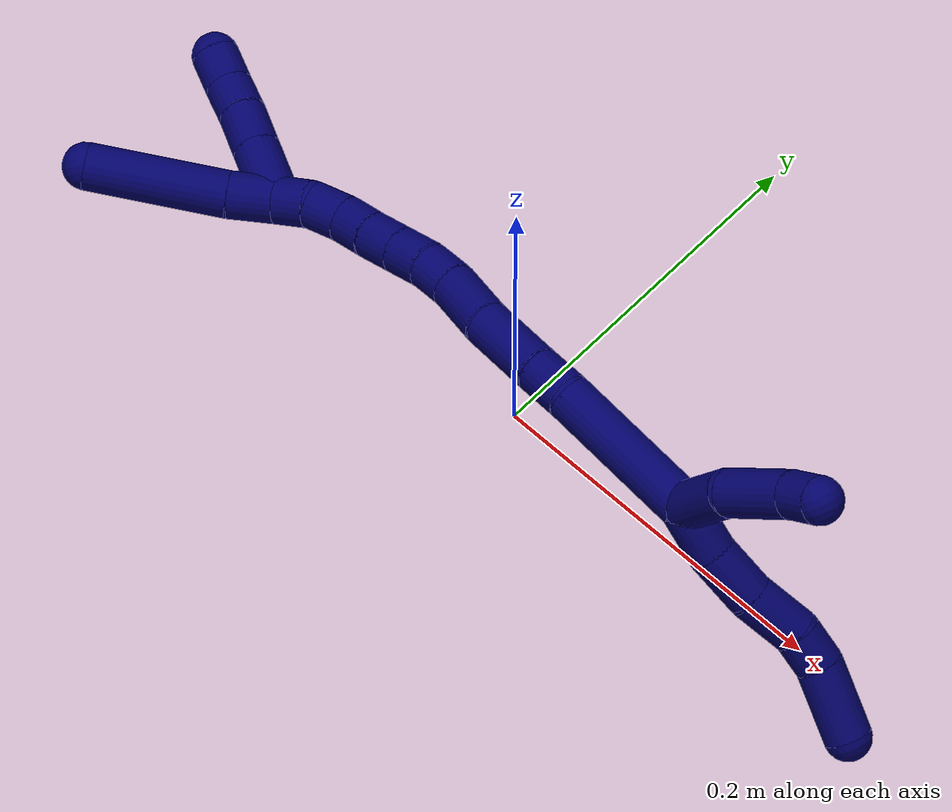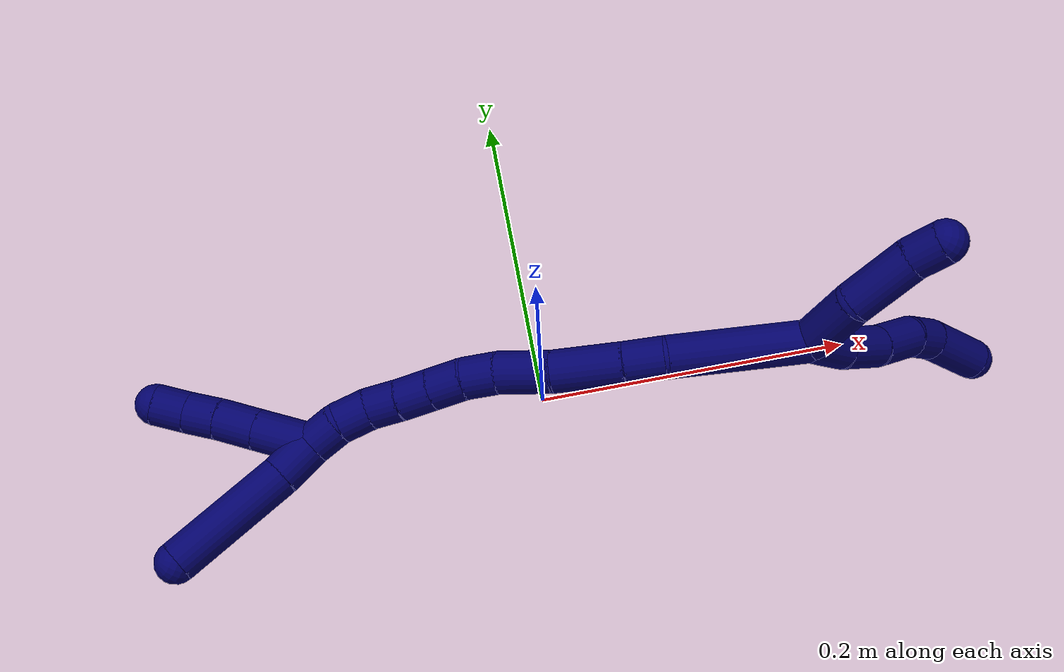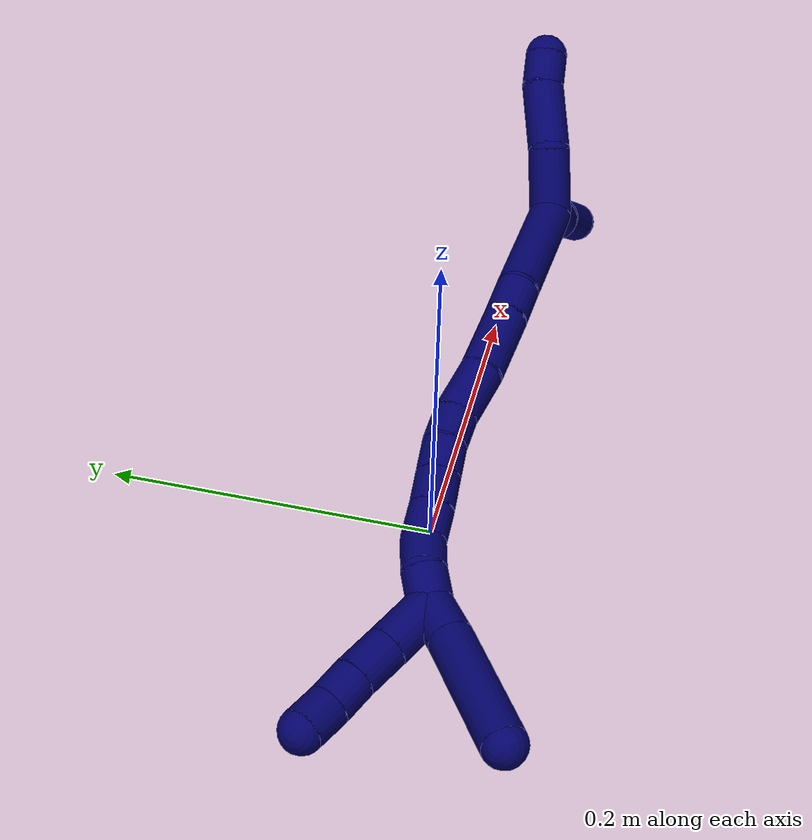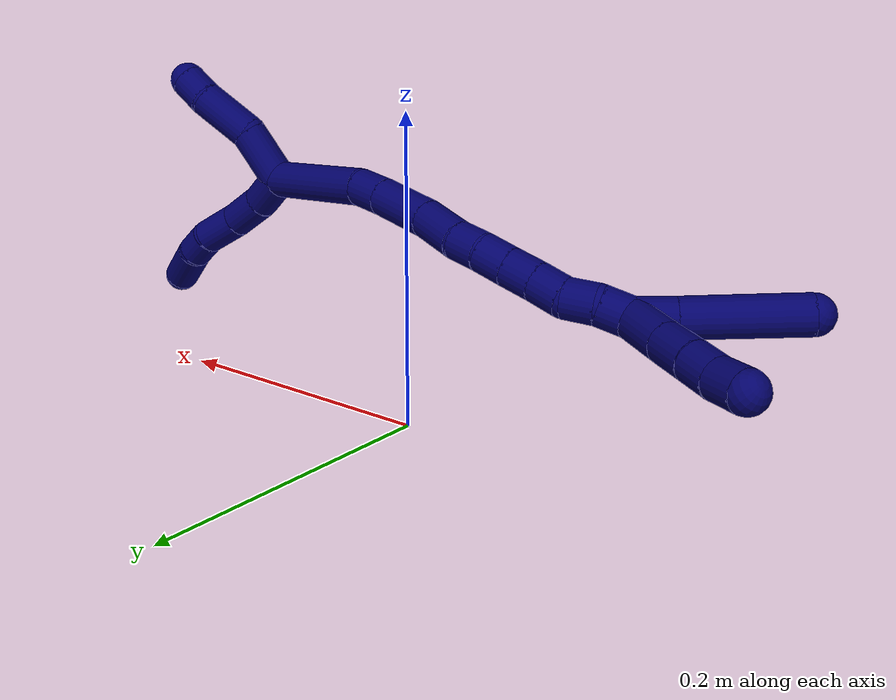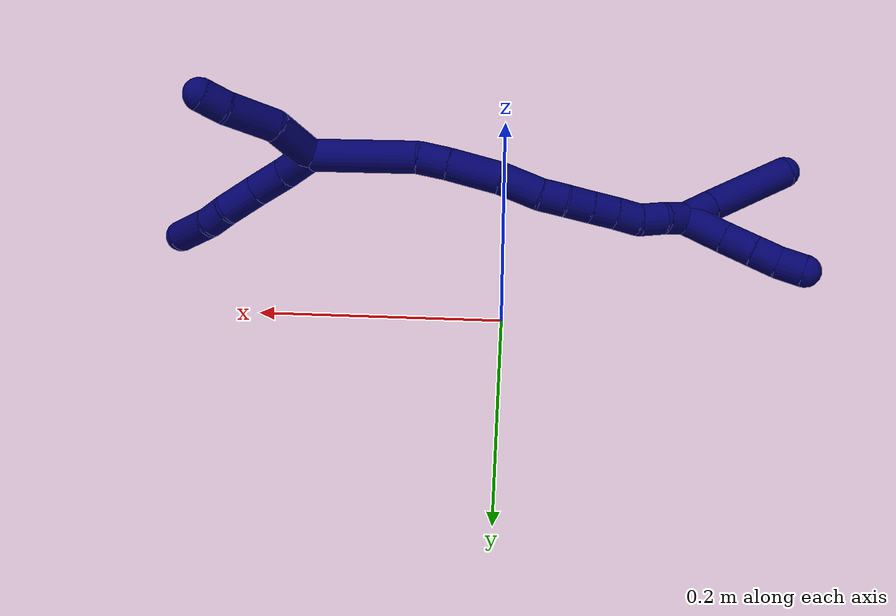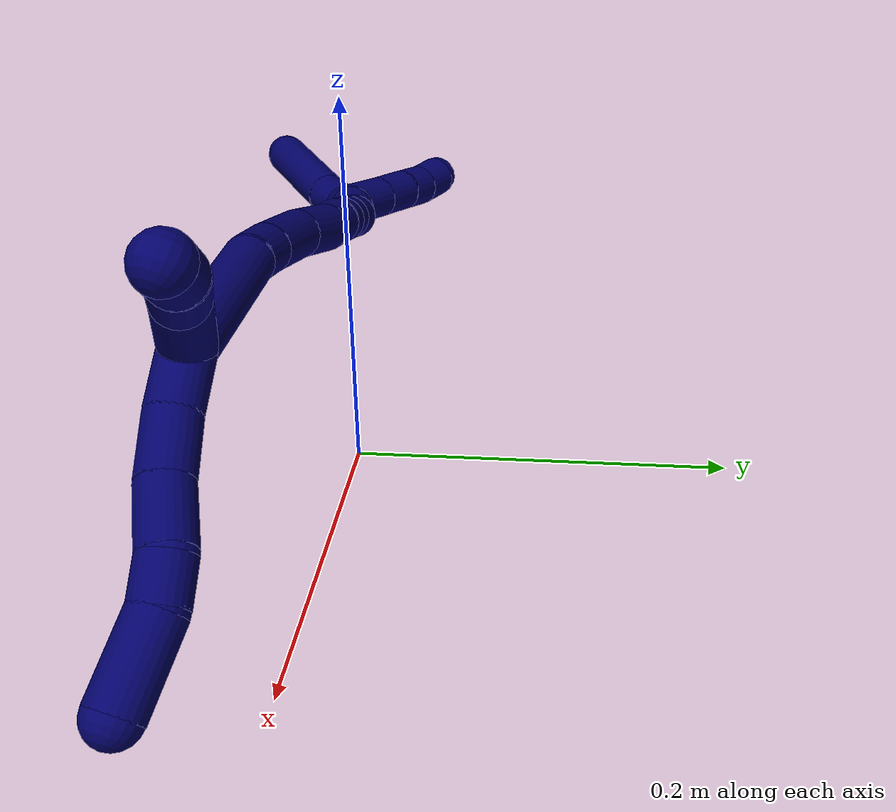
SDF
<sdf version="1.7">
 <world name="default">
  <model name="7">
   <static>0</static>
   <link name="7">
    <collision name="collision-cylinder-e_1_2_8">
     <pose>3e-06 0.002511 -0.014051 -2.96478 0.000212 -0.00239</pose>
     <geometry><cylinder><radius>0.0125</radius><length>0.028547</length></cylinder></geometry>
     <surface>
      <friction><ode><mu>1.16</mu><mu2>1.16</mu2><slip1>0</slip1><slip2>0</slip2></ode></friction>
      <contact><ode><kp>1e+06</kp><kd>1</kd><max_vel>0</max_vel><min_depth>0.001</min_depth></ode></contact>
     </surface>
    </collision>
    <visual name="visual-cylinder-e_1_2_8">
     <pose>3e-06 0.002511 -0.014051 -2.96478 0.000212 -0.00239</pose>
     <geometry><cylinder><radius>0.0125</radius><length>0.028547</length></cylinder></geometry>
     <material><ambient>0.003922 0 0.403922 1</ambient></material>
    </visual>
    <collision name="collision-cylinder-e_2_8_9">
     <pose>0.002222 0.009215 -0.042129 -2.8511 0.150239 -0.950382</pose>
     <geometry><cylinder><radius>0.0125</radius><length>0.029614</length></cylinder></geometry>
     <surface>
      <friction><ode><mu>1.16</mu><mu2>1.16</mu2><slip1>0</slip1><slip2>0</slip2></ode></friction>
      <contact><ode><kp>1e+06</kp><kd>1</kd><max_vel>0</max_vel><min_depth>0.001</min_depth></ode></contact>
     </surface>
    </collision>
    <visual name="visual-cylinder-e_2_8_9">
     <pose>0.002222 0.009215 -0.042129 -2.8511 0.150239 -0.950382</pose>
     <geometry><cylinder><radius>0.0125</radius><length>0.029614</length></cylinder></geometry>
     <material><ambient>0.003922 0 0.403922 1</ambient></material>
    </visual>
    <collision name="collision-cylinder-e_3_9_10">
     <pose>0.007814 0.019685 -0.069624 -2.70543 0.223344 -0.936915</pose>
     <geometry><cylinder><radius>0.0125</radius><length>0.030475</length></cylinder></geometry>
     <surface>
      <friction><ode><mu>1.16</mu><mu2>1.16</mu2><slip1>0</slip1><slip2>0</slip2></ode></friction>
      <contact><ode><kp>1e+06</kp><kd>1</kd><max_vel>0</max_vel><min_depth>0.001</min_depth></ode></contact>
     </surface>
    </collision>
    <visual name="visual-cylinder-e_3_9_10">
     <pose>0.007814 0.019685 -0.069624 -2.70543 0.223344 -0.936915</pose>
     <geometry><cylinder><radius>0.0125</radius><length>0.030475</length></cylinder></geometry>
     <material><ambient>0.003922 0 0.403922 1</ambient></material>
    </visual>
    <collision name="collision-cylinder-e_4_10_11">
     <pose>0.011478 0.028424 -0.093317 -2.90541 0.027542 -0.231114</pose>
     <geometry><cylinder><radius>0.0125</radius><length>0.021044</length></cylinder></geometry>
     <surface>
      <friction><ode><mu>1.16</mu><mu2>1.16</mu2><slip1>0</slip1><slip2>0</slip2></ode></friction>
      <contact><ode><kp>1e+06</kp><kd>1</kd><max_vel>0</max_vel><min_depth>0.001</min_depth></ode></contact>
     </surface>
    </collision>
    <visual name="visual-cylinder-e_4_10_11">
     <pose>0.011478 0.028424 -0.093317 -2.90541 0.027542 -0.231114</pose>
     <geometry><cylinder><radius>0.0125</radius><length>0.021044</length></cylinder></geometry>
     <material><ambient>0.003922 0 0.403922 1</ambient></material>
    </visual>
    <collision name="collision-cylinder-e_5_11_6">
     <pose>0.011664 0.030521 -0.1237 3.12355 -0.005181 -0.559165</pose>
     <geometry><cylinder><radius>0.0125</radius><length>0.04032</length></cylinder></geometry>
     <surface>
      <friction><ode><mu>1.16</mu><mu2>1.16</mu2><slip1>0</slip1><slip2>0</slip2></ode></friction>
      <contact><ode><kp>1e+06</kp><kd>1</kd><max_vel>0</max_vel><min_depth>0.001</min_depth></ode></contact>
     </surface>
    </collision>
    <visual name="visual-cylinder-e_5_11_6">
     <pose>0.011664 0.030521 -0.1237 3.12355 -0.005181 -0.559165</pose>
     <geometry><cylinder><radius>0.0125</radius><length>0.04032</length></cylinder></geometry>
     <material><ambient>0.003922 0 0.403922 1</ambient></material>
    </visual>
    <collision name="collision-cylinder-e_1_2_12">
     <pose>0.019493 -0.000398 0.002569 0.153789 1.43821 0.134702</pose>
     <geometry><cylinder><radius>0.0125</radius><length>0.039332</length></cylinder></geometry>
     <surface>
      <friction><ode><mu>1.16</mu><mu2>1.16</mu2><slip1>0</slip1><slip2>0</slip2></ode></friction>
      <contact><ode><kp>1e+06</kp><kd>1</kd><max_vel>0</max_vel><min_depth>0.001</min_depth></ode></contact>
     </surface>
    </collision>
    <visual name="visual-cylinder-e_1_2_12">
     <pose>0.019493 -0.000398 0.002569 0.153789 1.43821 0.134702</pose>
     <geometry><cylinder><radius>0.0125</radius><length>0.039332</length></cylinder></geometry>
     <material><ambient>0.003922 0 0.403922 1</ambient></material>
    </visual>
    <collision name="collision-cylinder-e_2_12_13">
     <pose>0.058702 0.002168 0.001899 -2.40053 1.35164 -2.23922</pose>
     <geometry><cylinder><radius>0.0125</radius><length>0.040396</length></cylinder></geometry>
     <surface>
      <friction><ode><mu>1.16</mu><mu2>1.16</mu2><slip1>0</slip1><slip2>0</slip2></ode></friction>
      <contact><ode><kp>1e+06</kp><kd>1</kd><max_vel>0</max_vel><min_depth>0.001</min_depth></ode></contact>
     </surface>
    </collision>
    <visual name="visual-cylinder-e_2_12_13">
     <pose>0.058702 0.002168 0.001899 -2.40053 1.35164 -2.23922</pose>
     <geometry><cylinder><radius>0.0125</radius><length>0.040396</length></cylinder></geometry>
     <material><ambient>0.003922 0 0.403922 1</ambient></material>
    </visual>
    <collision name="collision-cylinder-e_3_13_5">
     <pose>0.088334 0.00471 -0.003393 2.93859 1.3626 2.89167</pose>
     <geometry><cylinder><radius>0.0125</radius><length>0.020272</length></cylinder></geometry>
     <surface>
      <friction><ode><mu>1.16</mu><mu2>1.16</mu2><slip1>0</slip1><slip2>0</slip2></ode></friction>
      <contact><ode><kp>1e+06</kp><kd>1</kd><max_vel>0</max_vel><min_depth>0.001</min_depth></ode></contact>
     </surface>
    </collision>
    <visual name="visual-cylinder-e_3_13_5">
     <pose>0.088334 0.00471 -0.003393 2.93859 1.3626 2.89167</pose>
     <geometry><cylinder><radius>0.0125</radius><length>0.020272</length></cylinder></geometry>
     <material><ambient>0.003922 0 0.403922 1</ambient></material>
    </visual>
    <collision name="collision-cylinder-e_1_2_14">
     <pose>-0.025386 -0.000984 0.032693 0.03009 -0.660021 -0.010308</pose>
     <geometry><cylinder><radius>0.0125</radius><length>0.082808</length></cylinder></geometry>
     <surface>
      <friction><ode><mu>1.16</mu><mu2>1.16</mu2><slip1>0</slip1><slip2>0</slip2></ode></friction>
      <contact><ode><kp>1e+06</kp><kd>1</kd><max_vel>0</max_vel><min_depth>0.001</min_depth></ode></contact>
     </surface>
    </collision>
    <visual name="visual-cylinder-e_1_2_14">
     <pose>-0.025386 -0.000984 0.032693 0.03009 -0.660021 -0.010308</pose>
     <geometry><cylinder><radius>0.0125</radius><length>0.082808</length></cylinder></geometry>
     <material><ambient>0.003922 0 0.403922 1</ambient></material>
    </visual>
    <collision name="collision-cylinder-e_2_14_15">
     <pose>-0.059521 -0.001096 0.073016 -0.113825 -0.850472 0.051592</pose>
     <geometry><cylinder><radius>0.0125</radius><length>0.023281</length></cylinder></geometry>
     <surface>
      <friction><ode><mu>1.16</mu><mu2>1.16</mu2><slip1>0</slip1><slip2>0</slip2></ode></friction>
      <contact><ode><kp>1e+06</kp><kd>1</kd><max_vel>0</max_vel><min_depth>0.001</min_depth></ode></contact>
     </surface>
    </collision>
    <visual name="visual-cylinder-e_2_14_15">
     <pose>-0.059521 -0.001096 0.073016 -0.113825 -0.850472 0.051592</pose>
     <geometry><cylinder><radius>0.0125</radius><length>0.023281</length></cylinder></geometry>
     <material><ambient>0.003922 0 0.403922 1</ambient></material>
    </visual>
    <collision name="collision-cylinder-e_3_15_16">
     <pose>-0.08417 0.002245 0.093782 -0.185757 -0.871707 0.086707</pose>
     <geometry><cylinder><radius>0.0125</radius><length>0.041544</length></cylinder></geometry>
     <surface>
      <friction><ode><mu>1.16</mu><mu2>1.16</mu2><slip1>0</slip1><slip2>0</slip2></ode></friction>
      <contact><ode><kp>1e+06</kp><kd>1</kd><max_vel>0</max_vel><min_depth>0.001</min_depth></ode></contact>
     </surface>
    </collision>
    <visual name="visual-cylinder-e_3_15_16">
     <pose>-0.08417 0.002245 0.093782 -0.185757 -0.871707 0.086707</pose>
     <geometry><cylinder><radius>0.0125</radius><length>0.041544</length></cylinder></geometry>
     <material><ambient>0.003922 0 0.403922 1</ambient></material>
    </visual>
    <collision name="collision-cylinder-e_4_16_17">
     <pose>-0.112324 0.008687 0.116606 -0.389242 -0.863761 0.181204</pose>
     <geometry><cylinder><radius>0.0125</radius><length>0.032237</length></cylinder></geometry>
     <surface>
      <friction><ode><mu>1.16</mu><mu2>1.16</mu2><slip1>0</slip1><slip2>0</slip2></ode></friction>
      <contact><ode><kp>1e+06</kp><kd>1</kd><max_vel>0</max_vel><min_depth>0.001</min_depth></ode></contact>
     </surface>
    </collision>
    <visual name="visual-cylinder-e_4_16_17">
     <pose>-0.112324 0.008687 0.116606 -0.389242 -0.863761 0.181204</pose>
     <geometry><cylinder><radius>0.0125</radius><length>0.032237</length></cylinder></geometry>
     <material><ambient>0.003922 0 0.403922 1</ambient></material>
    </visual>
    <collision name="collision-cylinder-e_5_17_18">
     <pose>-0.132407 0.013374 0.132477 -0.114844 -0.898973 0.05545</pose>
     <geometry><cylinder><radius>0.0125</radius><length>0.020004</length></cylinder></geometry>
     <surface>
      <friction><ode><mu>1.16</mu><mu2>1.16</mu2><slip1>0</slip1><slip2>0</slip2></ode></friction>
      <contact><ode><kp>1e+06</kp><kd>1</kd><max_vel>0</max_vel><min_depth>0.001</min_depth></ode></contact>
     </surface>
    </collision>
    <visual name="visual-cylinder-e_5_17_18">
     <pose>-0.132407 0.013374 0.132477 -0.114844 -0.898973 0.05545</pose>
     <geometry><cylinder><radius>0.0125</radius><length>0.020004</length></cylinder></geometry>
     <material><ambient>0.003922 0 0.403922 1</ambient></material>
    </visual>
    <collision name="collision-cylinder-e_6_18_19">
     <pose>-0.148874 0.014 0.143709 0.017288 -1.04199 -0.009922</pose>
     <geometry><cylinder><radius>0.0125</radius><length>0.020011</length></cylinder></geometry>
     <surface>
      <friction><ode><mu>1.16</mu><mu2>1.16</mu2><slip1>0</slip1><slip2>0</slip2></ode></friction>
      <contact><ode><kp>1e+06</kp><kd>1</kd><max_vel>0</max_vel><min_depth>0.001</min_depth></ode></contact>
     </surface>
    </collision>
    <visual name="visual-cylinder-e_6_18_19">
     <pose>-0.148874 0.014 0.143709 0.017288 -1.04199 -0.009922</pose>
     <geometry><cylinder><radius>0.0125</radius><length>0.020011</length></cylinder></geometry>
     <material><ambient>0.003922 0 0.403922 1</ambient></material>
    </visual>
    <collision name="collision-cylinder-e_7_19_20">
     <pose>-0.166119 0.013724 0.153938 0.036303 -1.02854 -0.020512</pose>
     <geometry><cylinder><radius>0.0125</radius><length>0.020096</length></cylinder></geometry>
     <surface>
      <friction><ode><mu>1.16</mu><mu2>1.16</mu2><slip1>0</slip1><slip2>0</slip2></ode></friction>
      <contact><ode><kp>1e+06</kp><kd>1</kd><max_vel>0</max_vel><min_depth>0.001</min_depth></ode></contact>
     </surface>
    </collision>
    <visual name="visual-cylinder-e_7_19_20">
     <pose>-0.166119 0.013724 0.153938 0.036303 -1.02854 -0.020512</pose>
     <geometry><cylinder><radius>0.0125</radius><length>0.020096</length></cylinder></geometry>
     <material><ambient>0.003922 0 0.403922 1</ambient></material>
    </visual>
    <collision name="collision-cylinder-e_8_20_21">
     <pose>-0.183289 0.013888 0.164279 -0.068079 -1.02748 0.038426</pose>
     <geometry><cylinder><radius>0.0125</radius><length>0.020008</length></cylinder></geometry>
     <surface>
      <friction><ode><mu>1.16</mu><mu2>1.16</mu2><slip1>0</slip1><slip2>0</slip2></ode></friction>
      <contact><ode><kp>1e+06</kp><kd>1</kd><max_vel>0</max_vel><min_depth>0.001</min_depth></ode></contact>
     </surface>
    </collision>
    <visual name="visual-cylinder-e_8_20_21">
     <pose>-0.183289 0.013888 0.164279 -0.068079 -1.02748 0.038426</pose>
     <geometry><cylinder><radius>0.0125</radius><length>0.020008</length></cylinder></geometry>
     <material><ambient>0.003922 0 0.403922 1</ambient></material>
    </visual>
    <collision name="collision-cylinder-e_9_21_22">
     <pose>-0.199277 0.011524 0.175565 0.417351 -0.836615 -0.187719</pose>
     <geometry><cylinder><radius>0.0125</radius><length>0.020003</length></cylinder></geometry>
     <surface>
      <friction><ode><mu>1.16</mu><mu2>1.16</mu2><slip1>0</slip1><slip2>0</slip2></ode></friction>
      <contact><ode><kp>1e+06</kp><kd>1</kd><max_vel>0</max_vel><min_depth>0.001</min_depth></ode></contact>
     </surface>
    </collision>
    <visual name="visual-cylinder-e_9_21_22">
     <pose>-0.199277 0.011524 0.175565 0.417351 -0.836615 -0.187719</pose>
     <geometry><cylinder><radius>0.0125</radius><length>0.020003</length></cylinder></geometry>
     <material><ambient>0.003922 0 0.403922 1</ambient></material>
    </visual>
    <collision name="collision-cylinder-e_10_22_1">
     <pose>-0.21542 0.005477 0.185295 0.745978 -1.05807 -0.449791</pose>
     <geometry><cylinder><radius>0.0125</radius><length>0.020009</length></cylinder></geometry>
     <surface>
      <friction><ode><mu>1.16</mu><mu2>1.16</mu2><slip1>0</slip1><slip2>0</slip2></ode></friction>
      <contact><ode><kp>1e+06</kp><kd>1</kd><max_vel>0</max_vel><min_depth>0.001</min_depth></ode></contact>
     </surface>
    </collision>
    <visual name="visual-cylinder-e_10_22_1">
     <pose>-0.21542 0.005477 0.185295 0.745978 -1.05807 -0.449791</pose>
     <geometry><cylinder><radius>0.0125</radius><length>0.020009</length></cylinder></geometry>
     <material><ambient>0.003922 0 0.403922 1</ambient></material>
    </visual>
    <collision name="collision-cylinder-e_1_1_23">
     <pose>-0.234313 0.00949 0.200557 -0.562193 -0.636074 0.189545</pose>
     <geometry><cylinder><radius>0.0125</radius><length>0.034257</length></cylinder></geometry>
     <surface>
      <friction><ode><mu>1.16</mu><mu2>1.16</mu2><slip1>0</slip1><slip2>0</slip2></ode></friction>
      <contact><ode><kp>1e+06</kp><kd>1</kd><max_vel>0</max_vel><min_depth>0.001</min_depth></ode></contact>
     </surface>
    </collision>
    <visual name="visual-cylinder-e_1_1_23">
     <pose>-0.234313 0.00949 0.200557 -0.562193 -0.636074 0.189545</pose>
     <geometry><cylinder><radius>0.0125</radius><length>0.034257</length></cylinder></geometry>
     <material><ambient>0.003922 0 0.403922 1</ambient></material>
    </visual>
    <collision name="collision-cylinder-e_2_23_24">
     <pose>-0.251684 0.022094 0.220872 -0.545885 -0.617667 0.178145</pose>
     <geometry><cylinder><radius>0.0125</radius><length>0.02485</length></cylinder></geometry>
     <surface>
      <friction><ode><mu>1.16</mu><mu2>1.16</mu2><slip1>0</slip1><slip2>0</slip2></ode></friction>
      <contact><ode><kp>1e+06</kp><kd>1</kd><max_vel>0</max_vel><min_depth>0.001</min_depth></ode></contact>
     </surface>
    </collision>
    <visual name="visual-cylinder-e_2_23_24">
     <pose>-0.251684 0.022094 0.220872 -0.545885 -0.617667 0.178145</pose>
     <geometry><cylinder><radius>0.0125</radius><length>0.02485</length></cylinder></geometry>
     <material><ambient>0.003922 0 0.403922 1</ambient></material>
    </visual>
    <collision name="collision-cylinder-e_3_24_25">
     <pose>-0.265211 0.031282 0.236328 -0.524075 -0.678552 0.188748</pose>
     <geometry><cylinder><radius>0.0125</radius><length>0.020175</length></cylinder></geometry>
     <surface>
      <friction><ode><mu>1.16</mu><mu2>1.16</mu2><slip1>0</slip1><slip2>0</slip2></ode></friction>
      <contact><ode><kp>1e+06</kp><kd>1</kd><max_vel>0</max_vel><min_depth>0.001</min_depth></ode></contact>
     </surface>
    </collision>
    <visual name="visual-cylinder-e_3_24_25">
     <pose>-0.265211 0.031282 0.236328 -0.524075 -0.678552 0.188748</pose>
     <geometry><cylinder><radius>0.0125</radius><length>0.020175</length></cylinder></geometry>
     <material><ambient>0.003922 0 0.403922 1</ambient></material>
    </visual>
    <collision name="collision-cylinder-e_4_25_4">
     <pose>-0.277 0.038841 0.25115 -0.42477 -0.554851 0.122659</pose>
     <geometry><cylinder><radius>0.0125</radius><length>0.020718</length></cylinder></geometry>
     <surface>
      <friction><ode><mu>1.16</mu><mu2>1.16</mu2><slip1>0</slip1><slip2>0</slip2></ode></friction>
      <contact><ode><kp>1e+06</kp><kd>1</kd><max_vel>0</max_vel><min_depth>0.001</min_depth></ode></contact>
     </surface>
    </collision>
    <visual name="visual-cylinder-e_4_25_4">
     <pose>-0.277 0.038841 0.25115 -0.42477 -0.554851 0.122659</pose>
     <geometry><cylinder><radius>0.0125</radius><length>0.020718</length></cylinder></geometry>
     <material><ambient>0.003922 0 0.403922 1</ambient></material>
    </visual>
    <collision name="collision-cylinder-e_1_1_26">
     <pose>-0.232093 -0.005694 0.1948 0.925625 -0.681219 -0.350064</pose>
     <geometry><cylinder><radius>0.0125</radius><length>0.025264</length></cylinder></geometry>
     <surface>
      <friction><ode><mu>1.16</mu><mu2>1.16</mu2><slip1>0</slip1><slip2>0</slip2></ode></friction>
      <contact><ode><kp>1e+06</kp><kd>1</kd><max_vel>0</max_vel><min_depth>0.001</min_depth></ode></contact>
     </surface>
    </collision>
    <visual name="visual-cylinder-e_1_1_26">
     <pose>-0.232093 -0.005694 0.1948 0.925625 -0.681219 -0.350064</pose>
     <geometry><cylinder><radius>0.0125</radius><length>0.025264</length></cylinder></geometry>
     <material><ambient>0.003922 0 0.403922 1</ambient></material>
    </visual>
    <collision name="collision-cylinder-e_2_26_3">
     <pose>-0.26274 -0.035219 0.220979 0.818894 -0.652605 -0.291628</pose>
     <geometry><cylinder><radius>0.0125</radius><length>0.074736</length></cylinder></geometry>
     <surface>
      <friction><ode><mu>1.16</mu><mu2>1.16</mu2><slip1>0</slip1><slip2>0</slip2></ode></friction>
      <contact><ode><kp>1e+06</kp><kd>1</kd><max_vel>0</max_vel><min_depth>0.001</min_depth></ode></contact>
     </surface>
    </collision>
    <visual name="visual-cylinder-e_2_26_3">
     <pose>-0.26274 -0.035219 0.220979 0.818894 -0.652605 -0.291628</pose>
     <geometry><cylinder><radius>0.0125</radius><length>0.074736</length></cylinder></geometry>
     <material><ambient>0.003922 0 0.403922 1</ambient></material>
    </visual>
    <collision name="collision-sphere-3">
     <pose>-0.285432 -0.056904 0.241258 0 -0 0</pose>
     <geometry><sphere><radius>0.0125</radius></sphere></geometry>
     <surface>
      <friction><ode><mu>1.16</mu><mu2>1.16</mu2><slip1>0</slip1><slip2>0</slip2></ode></friction>
      <contact><ode><kp>1e+06</kp><kd>1</kd><max_vel>0</max_vel><min_depth>0.001</min_depth></ode></contact>
     </surface>
    </collision>
    <visual name="visual-sphere-3">
     <pose>-0.285432 -0.056904 0.241258 0 -0 0</pose>
     <geometry><sphere><radius>0.0125</radius></sphere></geometry>
     <material><ambient>0.003922 0 0.403922 1</ambient></material>
    </visual>
    <collision name="collision-sphere-26">
     <pose>-0.240048 -0.013534 0.2007 0 -0 0</pose>
     <geometry><sphere><radius>0.0125</radius></sphere></geometry>
     <surface>
      <friction><ode><mu>1.16</mu><mu2>1.16</mu2><slip1>0</slip1><slip2>0</slip2></ode></friction>
      <contact><ode><kp>1e+06</kp><kd>1</kd><max_vel>0</max_vel><min_depth>0.001</min_depth></ode></contact>
     </surface>
    </collision>
    <visual name="visual-sphere-26">
     <pose>-0.240048 -0.013534 0.2007 0 -0 0</pose>
     <geometry><sphere><radius>0.0125</radius></sphere></geometry>
     <material><ambient>0.003922 0 0.403922 1</ambient></material>
    </visual>
    <collision name="collision-sphere-4">
     <pose>-0.282458 0.042469 0.259173 0 -0 0</pose>
     <geometry><sphere><radius>0.0125</radius></sphere></geometry>
     <surface>
      <friction><ode><mu>1.16</mu><mu2>1.16</mu2><slip1>0</slip1><slip2>0</slip2></ode></friction>
      <contact><ode><kp>1e+06</kp><kd>1</kd><max_vel>0</max_vel><min_depth>0.001</min_depth></ode></contact>
     </surface>
    </collision>
    <visual name="visual-sphere-4">
     <pose>-0.282458 0.042469 0.259173 0 -0 0</pose>
     <geometry><sphere><radius>0.0125</radius></sphere></geometry>
     <material><ambient>0.003922 0 0.403922 1</ambient></material>
    </visual>
    <collision name="collision-sphere-25">
     <pose>-0.271543 0.035212 0.243128 0 -0 0</pose>
     <geometry><sphere><radius>0.0125</radius></sphere></geometry>
     <surface>
      <friction><ode><mu>1.16</mu><mu2>1.16</mu2><slip1>0</slip1><slip2>0</slip2></ode></friction>
      <contact><ode><kp>1e+06</kp><kd>1</kd><max_vel>0</max_vel><min_depth>0.001</min_depth></ode></contact>
     </surface>
    </collision>
    <visual name="visual-sphere-25">
     <pose>-0.271543 0.035212 0.243128 0 -0 0</pose>
     <geometry><sphere><radius>0.0125</radius></sphere></geometry>
     <material><ambient>0.003922 0 0.403922 1</ambient></material>
    </visual>
    <collision name="collision-sphere-24">
     <pose>-0.25888 0.027353 0.229529 0 -0 0</pose>
     <geometry><sphere><radius>0.0125</radius></sphere></geometry>
     <surface>
      <friction><ode><mu>1.16</mu><mu2>1.16</mu2><slip1>0</slip1><slip2>0</slip2></ode></friction>
      <contact><ode><kp>1e+06</kp><kd>1</kd><max_vel>0</max_vel><min_depth>0.001</min_depth></ode></contact>
     </surface>
    </collision>
    <visual name="visual-sphere-24">
     <pose>-0.25888 0.027353 0.229529 0 -0 0</pose>
     <geometry><sphere><radius>0.0125</radius></sphere></geometry>
     <material><ambient>0.003922 0 0.403922 1</ambient></material>
    </visual>
    <collision name="collision-sphere-23">
     <pose>-0.244488 0.016835 0.212215 0 -0 0</pose>
     <geometry><sphere><radius>0.0125</radius></sphere></geometry>
     <surface>
      <friction><ode><mu>1.16</mu><mu2>1.16</mu2><slip1>0</slip1><slip2>0</slip2></ode></friction>
      <contact><ode><kp>1e+06</kp><kd>1</kd><max_vel>0</max_vel><min_depth>0.001</min_depth></ode></contact>
     </surface>
    </collision>
    <visual name="visual-sphere-23">
     <pose>-0.244488 0.016835 0.212215 0 -0 0</pose>
     <geometry><sphere><radius>0.0125</radius></sphere></geometry>
     <material><ambient>0.003922 0 0.403922 1</ambient></material>
    </visual>
    <collision name="collision-sphere-1">
     <pose>-0.224138 0.002146 0.188899 0 -0 0</pose>
     <geometry><sphere><radius>0.0125</radius></sphere></geometry>
     <surface>
      <friction><ode><mu>1.16</mu><mu2>1.16</mu2><slip1>0</slip1><slip2>0</slip2></ode></friction>
      <contact><ode><kp>1e+06</kp><kd>1</kd><max_vel>0</max_vel><min_depth>0.001</min_depth></ode></contact>
     </surface>
    </collision>
    <visual name="visual-sphere-1">
     <pose>-0.224138 0.002146 0.188899 0 -0 0</pose>
     <geometry><sphere><radius>0.0125</radius></sphere></geometry>
     <material><ambient>0.003922 0 0.403922 1</ambient></material>
    </visual>
    <collision name="collision-sphere-22">
     <pose>-0.206702 0.008808 0.181691 0 -0 0</pose>
     <geometry><sphere><radius>0.0125</radius></sphere></geometry>
     <surface>
      <friction><ode><mu>1.16</mu><mu2>1.16</mu2><slip1>0</slip1><slip2>0</slip2></ode></friction>
      <contact><ode><kp>1e+06</kp><kd>1</kd><max_vel>0</max_vel><min_depth>0.001</min_depth></ode></contact>
     </surface>
    </collision>
    <visual name="visual-sphere-22">
     <pose>-0.206702 0.008808 0.181691 0 -0 0</pose>
     <geometry><sphere><radius>0.0125</radius></sphere></geometry>
     <material><ambient>0.003922 0 0.403922 1</ambient></material>
    </visual>
    <collision name="collision-sphere-21">
     <pose>-0.191852 0.01424 0.169439 0 -0 0</pose>
     <geometry><sphere><radius>0.0125</radius></sphere></geometry>
     <surface>
      <friction><ode><mu>1.16</mu><mu2>1.16</mu2><slip1>0</slip1><slip2>0</slip2></ode></friction>
      <contact><ode><kp>1e+06</kp><kd>1</kd><max_vel>0</max_vel><min_depth>0.001</min_depth></ode></contact>
     </surface>
    </collision>
    <visual name="visual-sphere-21">
     <pose>-0.191852 0.01424 0.169439 0 -0 0</pose>
     <geometry><sphere><radius>0.0125</radius></sphere></geometry>
     <material><ambient>0.003922 0 0.403922 1</ambient></material>
    </visual>
    <collision name="collision-sphere-6">
     <pose>0.011559 0.030158 -0.143856 0 -0 0</pose>
     <geometry><sphere><radius>0.0125</radius></sphere></geometry>
     <surface>
      <friction><ode><mu>1.16</mu><mu2>1.16</mu2><slip1>0</slip1><slip2>0</slip2></ode></friction>
      <contact><ode><kp>1e+06</kp><kd>1</kd><max_vel>0</max_vel><min_depth>0.001</min_depth></ode></contact>
     </surface>
    </collision>
    <visual name="visual-sphere-6">
     <pose>0.011559 0.030158 -0.143856 0 -0 0</pose>
     <geometry><sphere><radius>0.0125</radius></sphere></geometry>
     <material><ambient>0.003922 0 0.403922 1</ambient></material>
    </visual>
    <collision name="collision-sphere-11">
     <pose>0.011768 0.030885 -0.103543 0 -0 0</pose>
     <geometry><sphere><radius>0.0125</radius></sphere></geometry>
     <surface>
      <friction><ode><mu>1.16</mu><mu2>1.16</mu2><slip1>0</slip1><slip2>0</slip2></ode></friction>
      <contact><ode><kp>1e+06</kp><kd>1</kd><max_vel>0</max_vel><min_depth>0.001</min_depth></ode></contact>
     </surface>
    </collision>
    <visual name="visual-sphere-11">
     <pose>0.011768 0.030885 -0.103543 0 -0 0</pose>
     <geometry><sphere><radius>0.0125</radius></sphere></geometry>
     <material><ambient>0.003922 0 0.403922 1</ambient></material>
    </visual>
    <collision name="collision-sphere-10">
     <pose>0.011188 0.025963 -0.083092 0 -0 0</pose>
     <geometry><sphere><radius>0.0125</radius></sphere></geometry>
     <surface>
      <friction><ode><mu>1.16</mu><mu2>1.16</mu2><slip1>0</slip1><slip2>0</slip2></ode></friction>
      <contact><ode><kp>1e+06</kp><kd>1</kd><max_vel>0</max_vel><min_depth>0.001</min_depth></ode></contact>
     </surface>
    </collision>
    <visual name="visual-sphere-10">
     <pose>0.011188 0.025963 -0.083092 0 -0 0</pose>
     <geometry><sphere><radius>0.0125</radius></sphere></geometry>
     <material><ambient>0.003922 0 0.403922 1</ambient></material>
    </visual>
    <collision name="collision-sphere-9">
     <pose>0.004439 0.013408 -0.056156 0 -0 0</pose>
     <geometry><sphere><radius>0.0125</radius></sphere></geometry>
     <surface>
      <friction><ode><mu>1.16</mu><mu2>1.16</mu2><slip1>0</slip1><slip2>0</slip2></ode></friction>
      <contact><ode><kp>1e+06</kp><kd>1</kd><max_vel>0</max_vel><min_depth>0.001</min_depth></ode></contact>
     </surface>
    </collision>
    <visual name="visual-sphere-9">
     <pose>0.004439 0.013408 -0.056156 0 -0 0</pose>
     <geometry><sphere><radius>0.0125</radius></sphere></geometry>
     <material><ambient>0.003922 0 0.403922 1</ambient></material>
    </visual>
    <collision name="collision-sphere-2">
     <geometry><sphere><radius>0.0125</radius></sphere></geometry>
     <surface>
      <friction><ode><mu>1.16</mu><mu2>1.16</mu2><slip1>0</slip1><slip2>0</slip2></ode></friction>
      <contact><ode><kp>1e+06</kp><kd>1</kd><max_vel>0</max_vel><min_depth>0.001</min_depth></ode></contact>
     </surface>
    </collision>
    <visual name="visual-sphere-2">
     <geometry><sphere><radius>0.0125</radius></sphere></geometry>
     <material><ambient>0.003922 0 0.403922 1</ambient></material>
    </visual>
    <collision name="collision-sphere-19">
     <pose>-0.157513 0.013913 0.148756 0 -0 0</pose>
     <geometry><sphere><radius>0.0125</radius></sphere></geometry>
     <surface>
      <friction><ode><mu>1.16</mu><mu2>1.16</mu2><slip1>0</slip1><slip2>0</slip2></ode></friction>
      <contact><ode><kp>1e+06</kp><kd>1</kd><max_vel>0</max_vel><min_depth>0.001</min_depth></ode></contact>
     </surface>
    </collision>
    <visual name="visual-sphere-19">
     <pose>-0.157513 0.013913 0.148756 0 -0 0</pose>
     <geometry><sphere><radius>0.0125</radius></sphere></geometry>
     <material><ambient>0.003922 0 0.403922 1</ambient></material>
    </visual>
    <collision name="collision-sphere-8">
     <pose>6e-06 0.005021 -0.028102 0 -0 0</pose>
     <geometry><sphere><radius>0.0125</radius></sphere></geometry>
     <surface>
      <friction><ode><mu>1.16</mu><mu2>1.16</mu2><slip1>0</slip1><slip2>0</slip2></ode></friction>
      <contact><ode><kp>1e+06</kp><kd>1</kd><max_vel>0</max_vel><min_depth>0.001</min_depth></ode></contact>
     </surface>
    </collision>
    <visual name="visual-sphere-8">
     <pose>6e-06 0.005021 -0.028102 0 -0 0</pose>
     <geometry><sphere><radius>0.0125</radius></sphere></geometry>
     <material><ambient>0.003922 0 0.403922 1</ambient></material>
    </visual>
    <collision name="collision-sphere-12">
     <pose>0.038987 -0.000797 0.005138 0 -0 0</pose>
     <geometry><sphere><radius>0.0125</radius></sphere></geometry>
     <surface>
      <friction><ode><mu>1.16</mu><mu2>1.16</mu2><slip1>0</slip1><slip2>0</slip2></ode></friction>
      <contact><ode><kp>1e+06</kp><kd>1</kd><max_vel>0</max_vel><min_depth>0.001</min_depth></ode></contact>
     </surface>
    </collision>
    <visual name="visual-sphere-12">
     <pose>0.038987 -0.000797 0.005138 0 -0 0</pose>
     <geometry><sphere><radius>0.0125</radius></sphere></geometry>
     <material><ambient>0.003922 0 0.403922 1</ambient></material>
    </visual>
    <collision name="collision-sphere-13">
     <pose>0.078417 0.005132 -0.001341 0 -0 0</pose>
     <geometry><sphere><radius>0.0125</radius></sphere></geometry>
     <surface>
      <friction><ode><mu>1.16</mu><mu2>1.16</mu2><slip1>0</slip1><slip2>0</slip2></ode></friction>
      <contact><ode><kp>1e+06</kp><kd>1</kd><max_vel>0</max_vel><min_depth>0.001</min_depth></ode></contact>
     </surface>
    </collision>
    <visual name="visual-sphere-13">
     <pose>0.078417 0.005132 -0.001341 0 -0 0</pose>
     <geometry><sphere><radius>0.0125</radius></sphere></geometry>
     <material><ambient>0.003922 0 0.403922 1</ambient></material>
    </visual>
    <collision name="collision-sphere-5">
     <pose>0.098251 0.004287 -0.005445 0 -0 0</pose>
     <geometry><sphere><radius>0.0125</radius></sphere></geometry>
     <surface>
      <friction><ode><mu>1.16</mu><mu2>1.16</mu2><slip1>0</slip1><slip2>0</slip2></ode></friction>
      <contact><ode><kp>1e+06</kp><kd>1</kd><max_vel>0</max_vel><min_depth>0.001</min_depth></ode></contact>
     </surface>
    </collision>
    <visual name="visual-sphere-5">
     <pose>0.098251 0.004287 -0.005445 0 -0 0</pose>
     <geometry><sphere><radius>0.0125</radius></sphere></geometry>
     <material><ambient>0.003922 0 0.403922 1</ambient></material>
    </visual>
    <collision name="collision-sphere-14">
     <pose>-0.050772 -0.001968 0.065387 0 -0 0</pose>
     <geometry><sphere><radius>0.0125</radius></sphere></geometry>
     <surface>
      <friction><ode><mu>1.16</mu><mu2>1.16</mu2><slip1>0</slip1><slip2>0</slip2></ode></friction>
      <contact><ode><kp>1e+06</kp><kd>1</kd><max_vel>0</max_vel><min_depth>0.001</min_depth></ode></contact>
     </surface>
    </collision>
    <visual name="visual-sphere-14">
     <pose>-0.050772 -0.001968 0.065387 0 -0 0</pose>
     <geometry><sphere><radius>0.0125</radius></sphere></geometry>
     <material><ambient>0.003922 0 0.403922 1</ambient></material>
    </visual>
    <collision name="collision-sphere-15">
     <pose>-0.06827 -0.000224 0.080644 0 -0 0</pose>
     <geometry><sphere><radius>0.0125</radius></sphere></geometry>
     <surface>
      <friction><ode><mu>1.16</mu><mu2>1.16</mu2><slip1>0</slip1><slip2>0</slip2></ode></friction>
      <contact><ode><kp>1e+06</kp><kd>1</kd><max_vel>0</max_vel><min_depth>0.001</min_depth></ode></contact>
     </surface>
    </collision>
    <visual name="visual-sphere-15">
     <pose>-0.06827 -0.000224 0.080644 0 -0 0</pose>
     <geometry><sphere><radius>0.0125</radius></sphere></geometry>
     <material><ambient>0.003922 0 0.403922 1</ambient></material>
    </visual>
    <collision name="collision-sphere-16">
     <pose>-0.100069 0.004714 0.106919 0 -0 0</pose>
     <geometry><sphere><radius>0.0125</radius></sphere></geometry>
     <surface>
      <friction><ode><mu>1.16</mu><mu2>1.16</mu2><slip1>0</slip1><slip2>0</slip2></ode></friction>
      <contact><ode><kp>1e+06</kp><kd>1</kd><max_vel>0</max_vel><min_depth>0.001</min_depth></ode></contact>
     </surface>
    </collision>
    <visual name="visual-sphere-16">
     <pose>-0.100069 0.004714 0.106919 0 -0 0</pose>
     <geometry><sphere><radius>0.0125</radius></sphere></geometry>
     <material><ambient>0.003922 0 0.403922 1</ambient></material>
    </visual>
    <collision name="collision-sphere-17">
     <pose>-0.124578 0.01266 0.126293 0 -0 0</pose>
     <geometry><sphere><radius>0.0125</radius></sphere></geometry>
     <surface>
      <friction><ode><mu>1.16</mu><mu2>1.16</mu2><slip1>0</slip1><slip2>0</slip2></ode></friction>
      <contact><ode><kp>1e+06</kp><kd>1</kd><max_vel>0</max_vel><min_depth>0.001</min_depth></ode></contact>
     </surface>
    </collision>
    <visual name="visual-sphere-17">
     <pose>-0.124578 0.01266 0.126293 0 -0 0</pose>
     <geometry><sphere><radius>0.0125</radius></sphere></geometry>
     <material><ambient>0.003922 0 0.403922 1</ambient></material>
    </visual>
    <collision name="collision-sphere-18">
     <pose>-0.140235 0.014087 0.138662 0 -0 0</pose>
     <geometry><sphere><radius>0.0125</radius></sphere></geometry>
     <surface>
      <friction><ode><mu>1.16</mu><mu2>1.16</mu2><slip1>0</slip1><slip2>0</slip2></ode></friction>
      <contact><ode><kp>1e+06</kp><kd>1</kd><max_vel>0</max_vel><min_depth>0.001</min_depth></ode></contact>
     </surface>
    </collision>
    <visual name="visual-sphere-18">
     <pose>-0.140235 0.014087 0.138662 0 -0 0</pose>
     <geometry><sphere><radius>0.0125</radius></sphere></geometry>
     <material><ambient>0.003922 0 0.403922 1</ambient></material>
    </visual>
    <collision name="collision-sphere-20">
     <pose>-0.174726 0.013536 0.159119 0 -0 0</pose>
     <geometry><sphere><radius>0.0125</radius></sphere></geometry>
     <surface>
      <friction><ode><mu>1.16</mu><mu2>1.16</mu2><slip1>0</slip1><slip2>0</slip2></ode></friction>
      <contact><ode><kp>1e+06</kp><kd>1</kd><max_vel>0</max_vel><min_depth>0.001</min_depth></ode></contact>
     </surface>
    </collision>
    <visual name="visual-sphere-20">
     <pose>-0.174726 0.013536 0.159119 0 -0 0</pose>
     <geometry><sphere><radius>0.0125</radius></sphere></geometry>
     <material><ambient>0.003922 0 0.403922 1</ambient></material>
    </visual>
    <inertial>
     <pose>-0.101948 0.005576 0.085789 0 -0 0</pose>
     <mass>0.75</mass>
     <inertia><ixx>6.9e-05</ixx><ixy>0</ixy><ixz>0</ixz><iyy>9.7e-05</iyy><iyz>0</iyz><izz>9e-05</izz></inertia>
    </inertial>
   </link>
   <pose>0.148966 -0.036922 0.137394 -0.419772 -0.816352 0.248723</pose>
  </model>
 </world>
</sdf>
